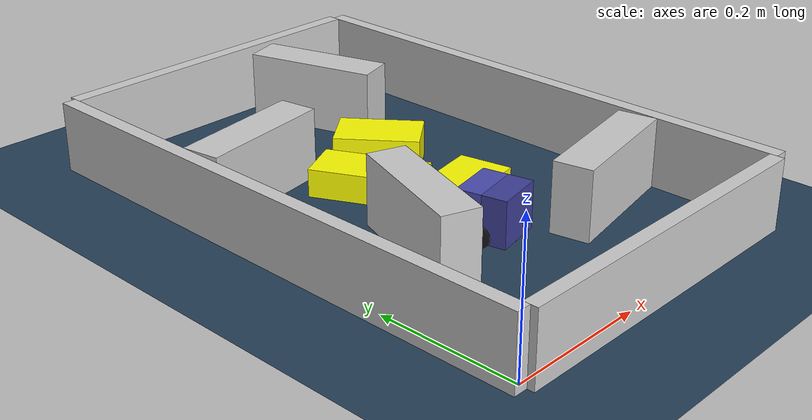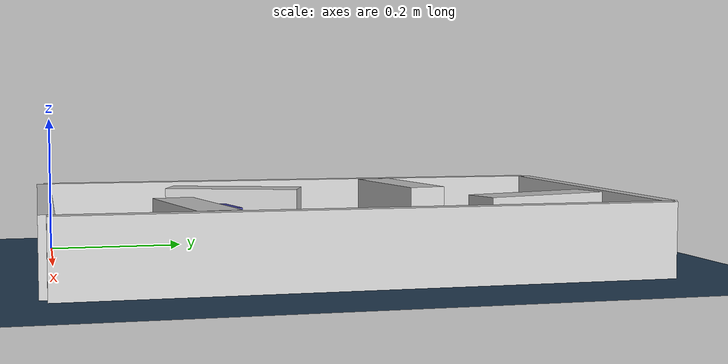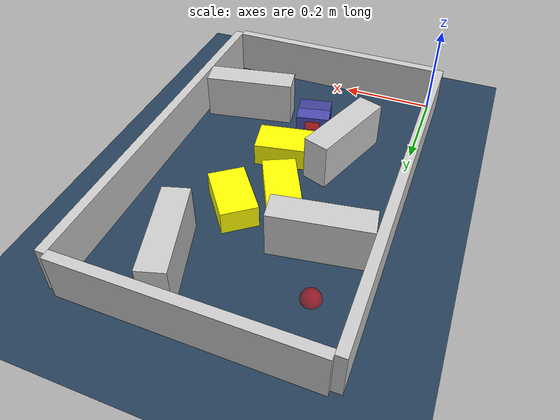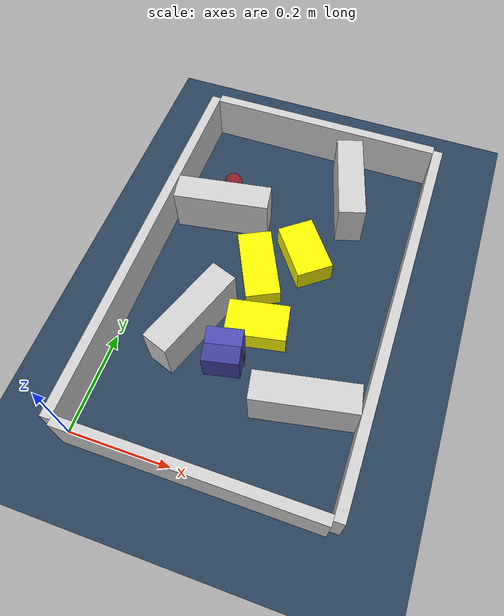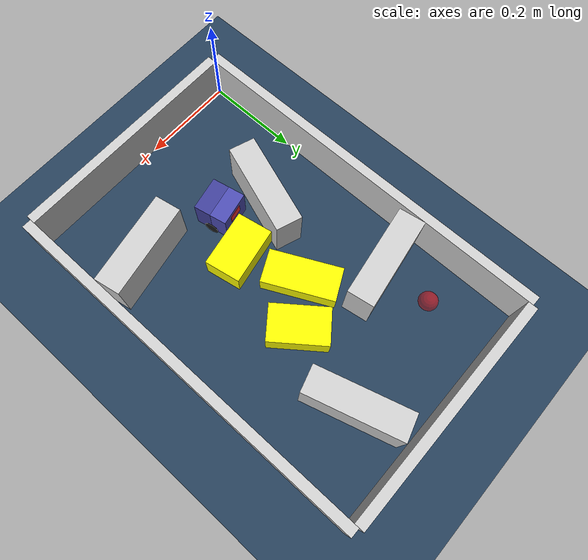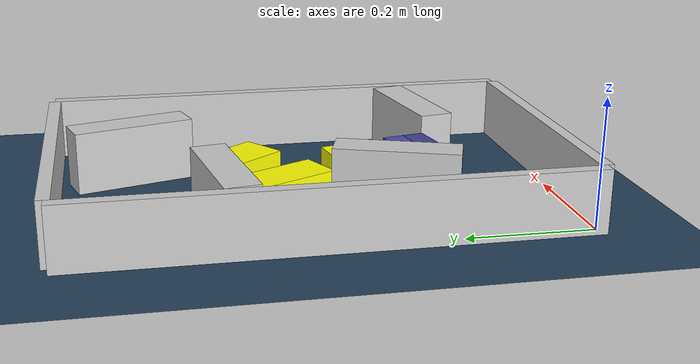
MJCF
<?xml version='1.0' encoding='utf-8'?>
<mujoco model="real_buildable">
  <compiler angle="degree" />
  <option timestep="0.002" integrator="implicitfast" iterations="100" cone="elliptic" />
  <default>
    <geom density="1" />
  </default>
  <asset>
    <texture builtin="gradient" height="3072" rgb1="0.3 0.5 0.7" rgb2="0 0 0" type="skybox" width="512" />
    <texture builtin="checker" height="300" mark="edge" markrgb="0.8 0.8 0.8" name="groundplane" rgb1="0.2 0.3 0.4" rgb2="0.1 0.2 0.3" type="2d" width="300" />
    <material name="groundplane" reflectance="0.2" texrepeat="5 5" texture="groundplane" texuniform="true" />
  </asset>
  <worldbody>
    <light dir="0 0 -1" directional="true" pos="0 0 1.5" />
    <geom name="floor" type="plane" condim="4" friction="0.5 0.005 0.001" material="groundplane" size="0 0 0.05" />
    <body name="walls">
      <geom name="wall_boundary_left" type="box" condim="4" friction="1.0 0.005 0.0001" rgba="0.8 0.8 0.8 1" pos="-0.010000 0.387500 0.050000" euler="0 0 0.000000" size="0.010000 0.397500 0.050000" />
      <geom name="wall_boundary_right" type="box" condim="4" friction="1.0 0.005 0.0001" rgba="0.8 0.8 0.8 1" pos="0.500000 0.387500 0.050000" euler="0 0 0.000000" size="0.010000 0.397500 0.050000" />
      <geom name="wall_boundary_bottom" type="box" condim="4" friction="1.0 0.005 0.0001" rgba="0.8 0.8 0.8 1" pos="0.245000 -0.010000 0.050000" euler="0 0 0.000000" size="0.245000 0.010000 0.050000" />
      <geom name="wall_boundary_top" type="box" condim="4" friction="1.0 0.005 0.0001" rgba="0.8 0.8 0.8 1" pos="0.245000 0.785000 0.050000" euler="0 0 0.000000" size="0.245000 0.010000 0.050000" />
      <geom name="wall_inner_1" type="box" condim="4" friction="1.0 0.005 0.0001" rgba="0.8 0.8 0.8 1" pos="0.389000 0.175000 0.050000" euler="0 0 10.600000" size="0.097500 0.027500 0.050000" />
      <geom name="wall_inner_2" type="box" condim="4" friction="1.0 0.005 0.0001" rgba="0.8 0.8 0.8 1" pos="0.139000 0.265000 0.050000" euler="0 0 70.500000" size="0.097500 0.027500 0.050000" />
      <geom name="wall_inner_3" type="box" condim="4" friction="1.0 0.005 0.0001" rgba="0.8 0.8 0.8 1" pos="0.100602 0.533208 0.050000" euler="0 0 189.001232" size="0.097500 0.027500 0.050000" />
      <geom name="wall_inner_4" type="box" condim="4" friction="1.0 0.005 0.0001" rgba="0.8 0.8 0.8 1" pos="0.339686 0.661693 0.050000" euler="0 0 106.502664" size="0.097500 0.027500 0.050000" />
    </body>
    <body name="car" pos="0.21947750132362287 0.21858729017870474 0.01" quat="0.63124704320808178 0 0 0.77558182704409351">
      <freejoint name="car_freejoint" />
      <inertial pos="0 0 0.0375" mass="0.35" diaginertia="0.000266 0.000266 0.000286" />
      <geom name="front_chassis_collision" type="box" pos="0.0175 0 0.0375" size="0.0175 0.035 0.0325" rgba="0.3 0.3 0.7 1" />
      <geom name="rear_chassis_collision" type="box" pos="-0.0175 0 0.0375" size="0.0175 0.035 0.0325" rgba="0.25 0.25 0.6 1" />
      <geom name="front_marker" type="box" pos="0.034 0 0.0505" size="0.002 0.015 0.01" rgba="1 0.2 0.2 1" contype="0" conaffinity="0" />
      <body name="rear_support_body" pos="-0.03 0 0.0025">
        <joint name="rear_caster_joint" type="ball" damping="0.0001" />
        <inertial pos="0 0 0" mass="0.025" diaginertia="0.000001 0.000001 0.000001" />
        <geom name="rear_support" type="sphere" pos="0 0 0" size="0.0025" friction="0 0 0" rgba="0.7 0.1 0.1 1" />
      </body>
      <body name="front_support_body" pos="0.03 0 0.0025">
        <joint name="front_caster_joint" type="ball" damping="0.0001" />
        <inertial pos="0 0 0" mass="0.025" diaginertia="0.000001 0.000001 0.000001" />
        <geom name="front_support" type="sphere" pos="0 0 0" size="0.0025" friction="0 0 0" rgba="0.1 0.7 0.1 1" />
      </body>
      <body name="left_wheel" pos="0 0.0375 0.015">
        <inertial pos="0 0 0" mass="0.05" diaginertia="0.000003 0.000006 0.000003" />
        <joint name="left_wheel_joint" type="hinge" axis="0 1 0" damping="0.01" armature="0.0001" />
        <geom name="left_wheel_collision" type="cylinder" size="0.015 0.0005" euler="90 0 0" rgba="0.1 0.1 0.1 1" />
      </body>
      <body name="right_wheel" pos="0 -0.0375 0.015">
        <inertial pos="0 0 0" mass="0.05" diaginertia="0.000003 0.000006 0.000003" />
        <joint name="right_wheel_joint" type="hinge" axis="0 1 0" damping="0.01" armature="0.0001" />
        <geom name="right_wheel_collision" type="cylinder" size="0.015 0.0005" euler="90 0 0" rgba="0.1 0.1 0.1 1" />
      </body>
    </body>
    <body name="obstacle_0_movable">
      <geom name="obstacle_0_movable" condim="4" pos="0.25623534764024292 0.30186491852551056 0.025000000000000001" friction="1 0.005 0.0001" rgba="1 1 0 1" size="0.037500 0.060000 0.025000" type="box" mass="0.1" quat="0.76918095939390196 0 0 -0.63903102562072567" />
      <joint type="free" />
    </body>
    <body name="obstacle_1_movable">
      <geom name="obstacle_1_movable" condim="4" pos="0.29398899999999872 0.48999999999999849 0.025000000000000001" friction="1 0.005 0.0001" rgba="1 1 0 1" size="0.037500 0.060000 0.025000" type="box" mass="0.1" quat="0.94675187785346293 0 0 0.32196410014307747" />
      <joint type="free" />
    </body>
    <body name="obstacle_2_movable">
      <geom name="obstacle_2_movable" condim="4" pos="0.21461199999999886 0.42895199999999944 0.02" friction="1 0.005 0.0001" rgba="1 1 0 1" size="0.035000 0.075000 0.020000" type="box" mass="0.1" quat="0.97395643580024216 0 0 0.22673522259077628" />
      <joint type="free" />
    </body>
    <site name="goal" type="sphere" pos="0.080000 0.640000 0.0" size="0.02" rgba="1 0 0 0.5" />
  </worldbody>
  <actuator>
    <velocity name="left_wheel_drive" joint="left_wheel_joint" ctrlrange="-25 25" kv="0.75" forcerange="-0.5 0.5" />
    <velocity name="right_wheel_drive" joint="right_wheel_joint" ctrlrange="-25 25" kv="0.75" forcerange="-0.5 0.5" />
  </actuator>
</mujoco>
